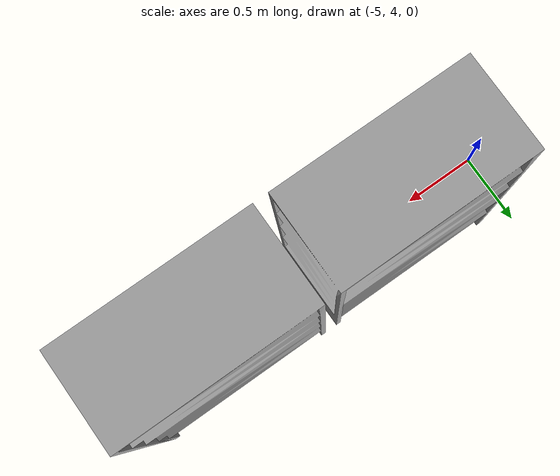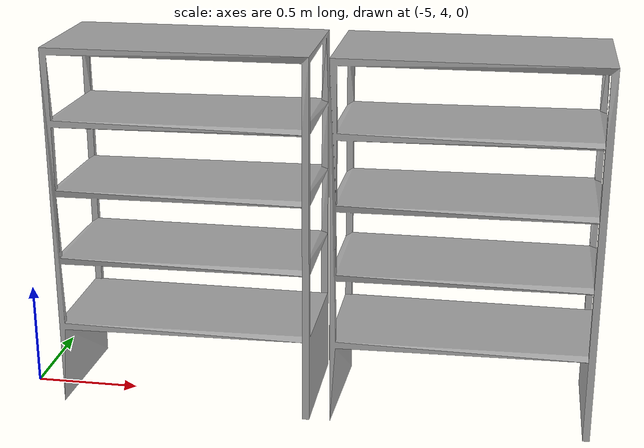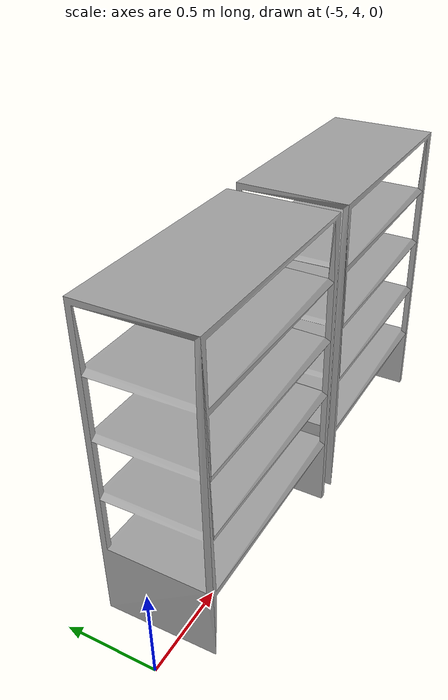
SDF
<sdf version='1.7'>
  <world name="testworld">
    <model name="my_lidar_model">
      <static>true</static> <!-- If you don't want it to move -->
          <pose>0 0 0 0 0 0</pose>
      <link name="link1">
      <sensor name='gpu_lidar' type='gpu_lidar'>"
        <pose>10 10 0 0 0 0</pose>
        <topic>lidar</topic>
        <update_rate>10</update_rate>
        <ray>
            <scan>
                <horizontal>
                    <samples>640</samples>
                    <resolution>1</resolution>
                    <min_angle>-1.396263</min_angle>
                    <max_angle>1.396263</max_angle>
                </horizontal>
                <vertical>
                    <samples>1</samples>
                    <resolution>0.01</resolution>
                    <min_angle>0</min_angle>
                    <max_angle>0</max_angle>
                </vertical>
            </scan>
            <range>
                <min>0.08</min>
                <max>10.0</max>
                <resolution>0.01</resolution>
            </range>
        </ray>
        <always_on>1</always_on>
        <visualize>true</visualize>
        </sensor>
        </link>

    <model name='StorageRack_2'>
      <link name='part_11'>
        <inertial>
          <pose>0 0 0.656909 0 -0 0</pose>
          <mass>2388.3800000000001</mass>
          <inertia>
            <ixx>627.82299999999998</ixx>
            <ixy>1.03728e-14</ixy>
            <ixz>-7.82377e-14</ixz>
            <iyy>868.52800000000002</iyy>
            <iyz>-1.5233099999999999e-13</iyz>
            <izz>392.91899999999998</izz>
          </inertia>
        </inertial>
        <pose>0 0 0 0 -0 0</pose>
        <visual name='part_11_visual_mesh_1'>
          <pose relative_to='part_11'>-1.11022e-16 -1.11022e-16 0 0 -0 0</pose>
          <geometry>
            <mesh>
              <uri>file:///home/mahe/Desktop/hk/erc_hackathon_main/Automation/models/StorageRack/model://StorageRack/assets/part_11.stl</uri>
            </mesh>
          </geometry>
          <material>
            <ambient>0.647059 0.647059 0.647059 1</ambient>
            <diffuse>0.647059 0.647059 0.647059 1</diffuse>
            <specular>0.1 0.1 0.1 1</specular>
            <emissive>0 0 0 0</emissive>
          </material>
        </visual>
        <collision name='part_11_collision_mesh_2'>
          <pose relative_to='part_11'>-1.11022e-16 -1.11022e-16 0 0 -0 0</pose>
          <geometry>
            <mesh>
              <uri>file:///home/mahe/Desktop/hk/erc_hackathon_main/Automation/models/StorageRack/model://StorageRack/assets/part_11.stl</uri>
            </mesh>
          </geometry>
        </collision>
        <enable_wind>false</enable_wind>
      </link>
      <pose>-4.20035 4.0999 0.38 0 -0 0.000207</pose>
      <static>false</static>
      <self_collide>false</self_collide>
    </model>
    <model name='StorageRack_3'>
      <link name='part_11'>
        <inertial>
          <pose>0 0 0.656909 0 -0 0</pose>
          <mass>2388.3800000000001</mass>
          <inertia>
            <ixx>627.82299999999998</ixx>
            <ixy>1.03728e-14</ixy>
            <ixz>-7.82377e-14</ixz>
            <iyy>868.52800000000002</iyy>
            <iyz>-1.5233099999999999e-13</iyz>
            <izz>392.91899999999998</izz>
          </inertia>
        </inertial>
        <pose>0 0 0 0 -0 0</pose>
        <visual name='part_11_visual_mesh_1'>
          <pose relative_to='part_11'>-1.11022e-16 -1.11022e-16 0 0 -0 0</pose>
          <geometry>
            <mesh>
              <uri>file:///home/mahe/Desktop/hk/erc_hackathon_main/Automation/models/StorageRack/model://StorageRack/assets/part_11.stl</uri>
            </mesh>
          </geometry>
          <material>
            <ambient>0.647059 0.647059 0.647059 1</ambient>
            <diffuse>0.647059 0.647059 0.647059 1</diffuse>
            <specular>0.1 0.1 0.1 1</specular>
            <emissive>0 0 0 0</emissive>
          </material>
        </visual>
        <collision name='part_11_collision_mesh_2'>
          <pose relative_to='part_11'>-1.11022e-16 -1.11022e-16 0 0 -0 0</pose>
          <geometry>
            <mesh>
              <uri>file:///home/mahe/Desktop/hk/erc_hackathon_main/Automation/models/StorageRack/model://StorageRack/assets/part_11.stl</uri>
            </mesh>
          </geometry>
        </collision>
        <enable_wind>false</enable_wind>
      </link>
      <pose>-2.9 4.1 0.379999 1e-06 -2e-06 2.4e-05</pose>
      <static>false</static>
      <self_collide>false</self_collide>
    </model>

    </model>
  </world>
</sdf>
